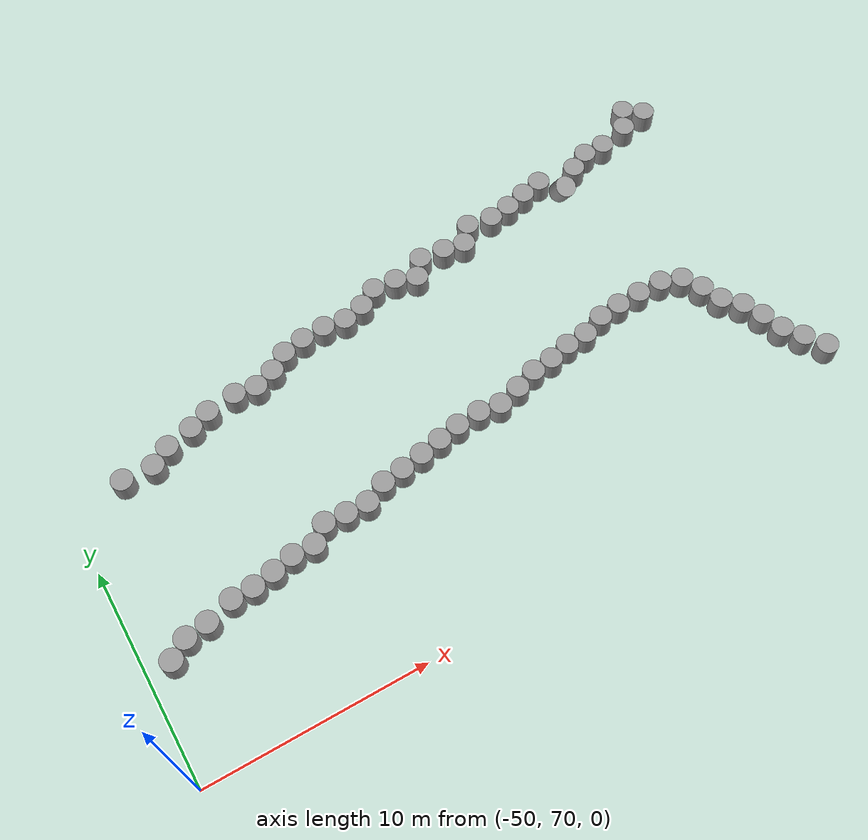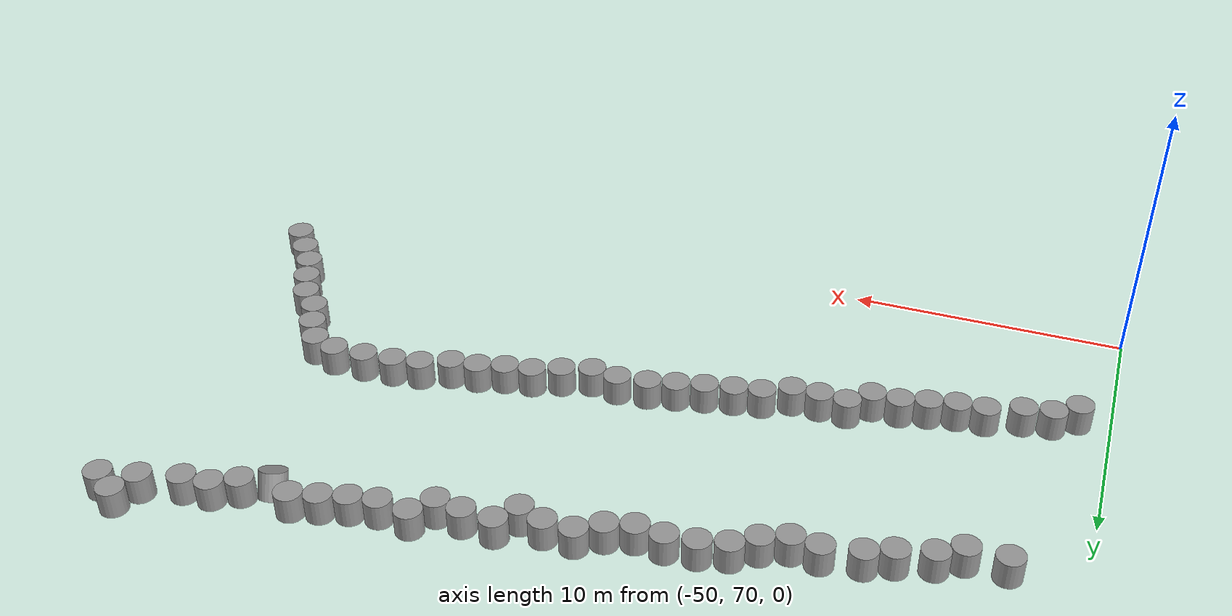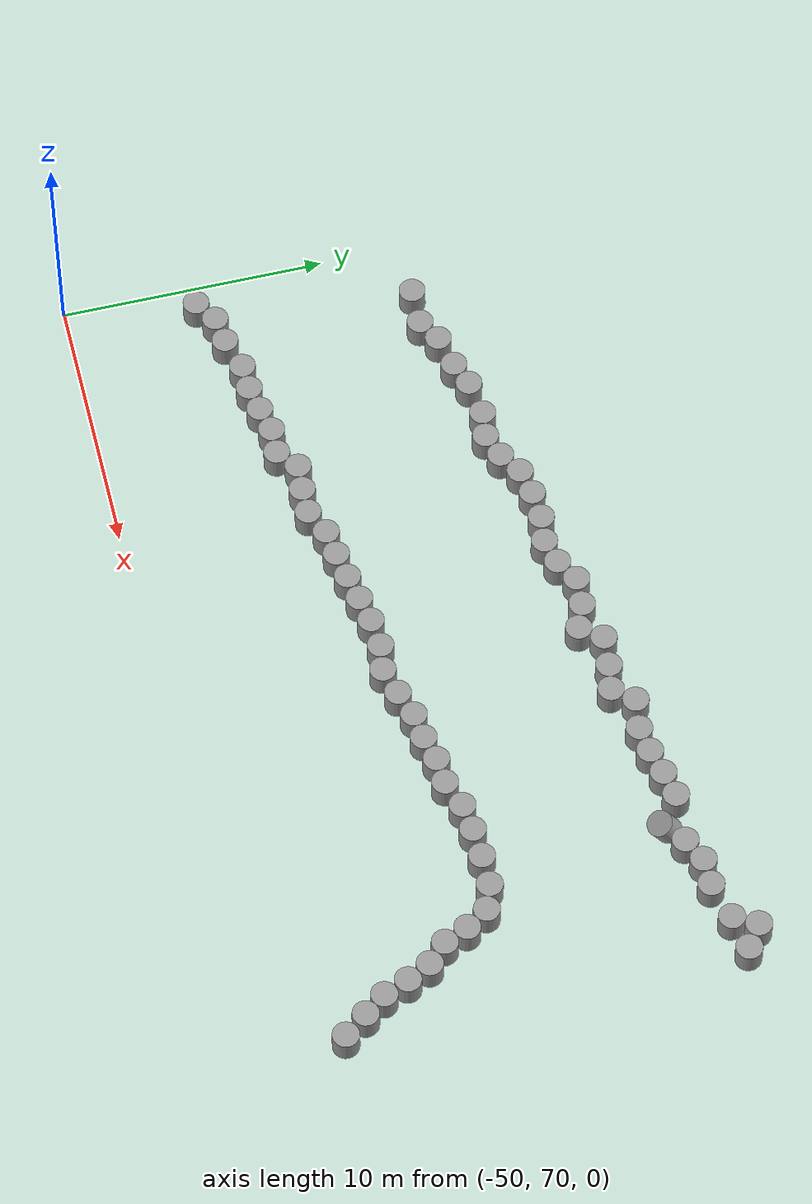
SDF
<sdf version="1.7">
 <world name="default">
  <model name="unit_cylinder_20">
   <pose>-17.9194 73.537 0.45131 1.4e-05 9e-06 0.000669</pose>
   <link name="link">
    <inertial>
     <mass>1</mass>
     <inertia><ixx>0.145833</ixx><ixy>0</ixy><ixz>0</ixz><iyy>0.145833</iyy><iyz>0</iyz><izz>0.125</izz></inertia>
    </inertial>
    <collision name="collision">
     <geometry><cylinder><radius>0.5</radius><length>1</length></cylinder></geometry>
    </collision>
    <visual name="visual">
     <geometry><cylinder><radius>0.5</radius><length>1</length></cylinder></geometry>
     <material>
      <script><name>Gazebo/Grey</name><uri>file://media/materials/scripts/gazebo.material</uri></script>
     </material>
    </visual>
   </link>
  </model>
  <model name="unit_cylinder_21">
   <pose>-18.5602 74.411 0.451304 7e-06 1e-05 9.9e-05</pose>
   <link name="link">
    <inertial>
     <mass>1</mass>
     <inertia><ixx>0.145833</ixx><ixy>0</ixy><ixz>0</ixz><iyy>0.145833</iyy><iyz>0</iyz><izz>0.125</izz></inertia>
    </inertial>
    <collision name="collision">
     <geometry><cylinder><radius>0.5</radius><length>1</length></cylinder></geometry>
    </collision>
    <visual name="visual">
     <geometry><cylinder><radius>0.5</radius><length>1</length></cylinder></geometry>
     <material>
      <script><name>Gazebo/Grey</name><uri>file://media/materials/scripts/gazebo.material</uri></script>
     </material>
    </visual>
   </link>
  </model>
  <model name="unit_cylinder_22">
   <pose>-19.1418 75.2245 0.451293 1e-06 -3e-06 0.001733</pose>
   <link name="link">
    <inertial>
     <mass>1</mass>
     <inertia><ixx>0.145833</ixx><ixy>0</ixy><ixz>0</ixz><iyy>0.145833</iyy><iyz>0</iyz><izz>0.125</izz></inertia>
    </inertial>
    <collision name="collision">
     <geometry><cylinder><radius>0.5</radius><length>1</length></cylinder></geometry>
    </collision>
    <visual name="visual">
     <geometry><cylinder><radius>0.5</radius><length>1</length></cylinder></geometry>
     <material>
      <script><name>Gazebo/Grey</name><uri>file://media/materials/scripts/gazebo.material</uri></script>
     </material>
    </visual>
   </link>
  </model>
  <model name="unit_cylinder_23">
   <pose>-19.5113 76.185 0.451305 1.8e-05 1e-06 0.017178</pose>
   <link name="link">
    <inertial>
     <mass>1</mass>
     <inertia><ixx>0.145833</ixx><ixy>0</ixy><ixz>0</ixz><iyy>0.145833</iyy><iyz>0</iyz><izz>0.125</izz></inertia>
    </inertial>
    <collision name="collision">
     <geometry><cylinder><radius>0.5</radius><length>1</length></cylinder></geometry>
    </collision>
    <visual name="visual">
     <geometry><cylinder><radius>0.5</radius><length>1</length></cylinder></geometry>
     <material>
      <script><name>Gazebo/Grey</name><uri>file://media/materials/scripts/gazebo.material</uri></script>
     </material>
    </visual>
   </link>
  </model>
  <model name="unit_cylinder_24">
   <pose>-19.9475 77.0849 0.451301 2.1e-05 -1e-06 -0.011678</pose>
   <link name="link">
    <inertial>
     <mass>1</mass>
     <inertia><ixx>0.145833</ixx><ixy>0</ixy><ixz>0</ixz><iyy>0.145833</iyy><iyz>0</iyz><izz>0.125</izz></inertia>
    </inertial>
    <collision name="collision">
     <geometry><cylinder><radius>0.5</radius><length>1</length></cylinder></geometry>
    </collision>
    <visual name="visual">
     <geometry><cylinder><radius>0.5</radius><length>1</length></cylinder></geometry>
     <material>
      <script><name>Gazebo/Grey</name><uri>file://media/materials/scripts/gazebo.material</uri></script>
     </material>
    </visual>
   </link>
  </model>
  <model name="unit_cylinder_25">
   <pose>-20.6426 77.8038 0.451297 2e-06 -5e-06 0.034095</pose>
   <link name="link">
    <inertial>
     <mass>1</mass>
     <inertia><ixx>0.145833</ixx><ixy>0</ixy><ixz>0</ixz><iyy>0.145833</iyy><iyz>0</iyz><izz>0.125</izz></inertia>
    </inertial>
    <collision name="collision">
     <geometry><cylinder><radius>0.5</radius><length>1</length></cylinder></geometry>
    </collision>
    <visual name="visual">
     <geometry><cylinder><radius>0.5</radius><length>1</length></cylinder></geometry>
     <material>
      <script><name>Gazebo/Grey</name><uri>file://media/materials/scripts/gazebo.material</uri></script>
     </material>
    </visual>
   </link>
  </model>
  <model name="unit_cylinder_26">
   <pose>-21.0312 78.7252 0.451299 9e-06 -1.4e-05 0.113391</pose>
   <link name="link">
    <inertial>
     <mass>1</mass>
     <inertia><ixx>0.145833</ixx><ixy>0</ixy><ixz>0</ixz><iyy>0.145833</iyy><iyz>0</iyz><izz>0.125</izz></inertia>
    </inertial>
    <collision name="collision">
     <geometry><cylinder><radius>0.5</radius><length>1</length></cylinder></geometry>
    </collision>
    <visual name="visual">
     <geometry><cylinder><radius>0.5</radius><length>1</length></cylinder></geometry>
     <material>
      <script><name>Gazebo/Grey</name><uri>file://media/materials/scripts/gazebo.material</uri></script>
     </material>
    </visual>
   </link>
  </model>
  <model name="unit_cylinder_27">
   <pose>-21.5664 79.57 0.451289 1e-06 -1.4e-05 0.025575</pose>
   <link name="link">
    <inertial>
     <mass>1</mass>
     <inertia><ixx>0.145833</ixx><ixy>0</ixy><ixz>0</ixz><iyy>0.145833</iyy><iyz>0</iyz><izz>0.125</izz></inertia>
    </inertial>
    <collision name="collision">
     <geometry><cylinder><radius>0.5</radius><length>1</length></cylinder></geometry>
    </collision>
    <visual name="visual">
     <geometry><cylinder><radius>0.5</radius><length>1</length></cylinder></geometry>
     <material>
      <script><name>Gazebo/Grey</name><uri>file://media/materials/scripts/gazebo.material</uri></script>
     </material>
    </visual>
   </link>
  </model>
  <model name="unit_cylinder_28">
   <pose>-22.5992 87.2027 0.452086 0.004535 0.000849 -0.012464</pose>
   <link name="link">
    <inertial>
     <mass>1</mass>
     <inertia><ixx>0.145833</ixx><ixy>0</ixy><ixz>0</ixz><iyy>0.145833</iyy><iyz>0</iyz><izz>0.125</izz></inertia>
    </inertial>
    <collision name="collision">
     <geometry><cylinder><radius>0.5</radius><length>1</length></cylinder></geometry>
    </collision>
    <visual name="visual">
     <geometry><cylinder><radius>0.5</radius><length>1</length></cylinder></geometry>
     <material>
      <script><name>Gazebo/Grey</name><uri>file://media/materials/scripts/gazebo.material</uri></script>
     </material>
    </visual>
   </link>
  </model>
  <model name="unit_cylinder_29">
   <pose>-21.7016 87.6433 0.453475 0.004662 0.001231 -0.073484</pose>
   <link name="link">
    <inertial>
     <mass>1</mass>
     <inertia><ixx>0.145833</ixx><ixy>0</ixy><ixz>0</ixz><iyy>0.145833</iyy><iyz>0</iyz><izz>0.125</izz></inertia>
    </inertial>
    <collision name="collision">
     <geometry><cylinder><radius>0.5</radius><length>1</length></cylinder></geometry>
    </collision>
    <visual name="visual">
     <geometry><cylinder><radius>0.5</radius><length>1</length></cylinder></geometry>
     <material>
      <script><name>Gazebo/Grey</name><uri>file://media/materials/scripts/gazebo.material</uri></script>
     </material>
    </visual>
   </link>
  </model>
  <model name="unit_cylinder_30">
   <pose>-20.6888 87.6672 0.452716 0.004649 0.000823 -0.00265</pose>
   <link name="link">
    <inertial>
     <mass>1</mass>
     <inertia><ixx>0.145833</ixx><ixy>0</ixy><ixz>0</ixz><iyy>0.145833</iyy><iyz>0</iyz><izz>0.125</izz></inertia>
    </inertial>
    <collision name="collision">
     <geometry><cylinder><radius>0.5</radius><length>1</length></cylinder></geometry>
    </collision>
    <visual name="visual">
     <geometry><cylinder><radius>0.5</radius><length>1</length></cylinder></geometry>
     <material>
      <script><name>Gazebo/Grey</name><uri>file://media/materials/scripts/gazebo.material</uri></script>
     </material>
    </visual>
   </link>
  </model>
  <model name="unit_cylinder_31">
   <pose>-19.2525 88.0542 0.453461 0.004626 0.001251 -0.17126</pose>
   <link name="link">
    <inertial>
     <mass>1</mass>
     <inertia><ixx>0.145833</ixx><ixy>0</ixy><ixz>0</ixz><iyy>0.145833</iyy><iyz>0</iyz><izz>0.125</izz></inertia>
    </inertial>
    <collision name="collision">
     <geometry><cylinder><radius>0.5</radius><length>1</length></cylinder></geometry>
    </collision>
    <visual name="visual">
     <geometry><cylinder><radius>0.5</radius><length>1</length></cylinder></geometry>
     <material>
      <script><name>Gazebo/Grey</name><uri>file://media/materials/scripts/gazebo.material</uri></script>
     </material>
    </visual>
   </link>
  </model>
  <model name="unit_cylinder_32">
   <pose>-18.7557 88.9221 0.457344 0.005127 0.000781 0.039913</pose>
   <link name="link">
    <inertial>
     <mass>1</mass>
     <inertia><ixx>0.145833</ixx><ixy>0</ixy><ixz>0</ixz><iyy>0.145833</iyy><iyz>0</iyz><izz>0.125</izz></inertia>
    </inertial>
    <collision name="collision">
     <geometry><cylinder><radius>0.5</radius><length>1</length></cylinder></geometry>
    </collision>
    <visual name="visual">
     <geometry><cylinder><radius>0.5</radius><length>1</length></cylinder></geometry>
     <material>
      <script><name>Gazebo/Grey</name><uri>file://media/materials/scripts/gazebo.material</uri></script>
     </material>
    </visual>
   </link>
  </model>
  <model name="unit_cylinder_33">
   <pose>-17.9369 88.3481 0.453737 0.003912 0.003043 -0.417717</pose>
   <link name="link">
    <inertial>
     <mass>1</mass>
     <inertia><ixx>0.145833</ixx><ixy>0</ixy><ixz>0</ixz><iyy>0.145833</iyy><iyz>0</iyz><izz>0.125</izz></inertia>
    </inertial>
    <collision name="collision">
     <geometry><cylinder><radius>0.5</radius><length>1</length></cylinder></geometry>
    </collision>
    <visual name="visual">
     <geometry><cylinder><radius>0.5</radius><length>1</length></cylinder></geometry>
     <material>
      <script><name>Gazebo/Grey</name><uri>file://media/materials/scripts/gazebo.material</uri></script>
     </material>
    </visual>
   </link>
  </model>
  <model name="unit_cylinder_72">
   <pose>-22.5065 79.9107 0.451281 -1.8e-05 -8e-06 -0.000212</pose>
   <link name="link">
    <inertial>
     <mass>1</mass>
     <inertia><ixx>0.145833</ixx><ixy>0</ixy><ixz>0</ixz><iyy>0.145833</iyy><iyz>0</iyz><izz>0.125</izz></inertia>
    </inertial>
    <collision name="collision">
     <geometry><cylinder><radius>0.5</radius><length>1</length></cylinder></geometry>
    </collision>
    <visual name="visual">
     <geometry><cylinder><radius>0.5</radius><length>1</length></cylinder></geometry>
     <material>
      <script><name>Gazebo/Grey</name><uri>file://media/materials/scripts/gazebo.material</uri></script>
     </material>
    </visual>
   </link>
  </model>
  <model name="unit_cylinder_73">
   <pose>-23.6803 79.9058 0.45126 6.7e-05 -9e-06 -0.002203</pose>
   <link name="link">
    <inertial>
     <mass>1</mass>
     <inertia><ixx>0.145833</ixx><ixy>0</ixy><ixz>0</ixz><iyy>0.145833</iyy><iyz>0</iyz><izz>0.125</izz></inertia>
    </inertial>
    <collision name="collision">
     <geometry><cylinder><radius>0.5</radius><length>1</length></cylinder></geometry>
    </collision>
    <visual name="visual">
     <geometry><cylinder><radius>0.5</radius><length>1</length></cylinder></geometry>
     <material>
      <script><name>Gazebo/Grey</name><uri>file://media/materials/scripts/gazebo.material</uri></script>
     </material>
    </visual>
   </link>
  </model>
  <model name="unit_cylinder_74">
   <pose>-24.7959 79.8423 0.451281 8.5e-05 1.2e-05 -0.000329</pose>
   <link name="link">
    <inertial>
     <mass>1</mass>
     <inertia><ixx>0.145833</ixx><ixy>0</ixy><ixz>0</ixz><iyy>0.145833</iyy><iyz>0</iyz><izz>0.125</izz></inertia>
    </inertial>
    <collision name="collision">
     <geometry><cylinder><radius>0.5</radius><length>1</length></cylinder></geometry>
    </collision>
    <visual name="visual">
     <geometry><cylinder><radius>0.5</radius><length>1</length></cylinder></geometry>
     <material>
      <script><name>Gazebo/Grey</name><uri>file://media/materials/scripts/gazebo.material</uri></script>
     </material>
    </visual>
   </link>
  </model>
  <model name="unit_cylinder_75">
   <pose>-25.8239 79.7045 0.451267 5.3e-05 1e-05 -0.001294</pose>
   <link name="link">
    <inertial>
     <mass>1</mass>
     <inertia><ixx>0.145833</ixx><ixy>0</ixy><ixz>0</ixz><iyy>0.145833</iyy><iyz>0</iyz><izz>0.125</izz></inertia>
    </inertial>
    <collision name="collision">
     <geometry><cylinder><radius>0.5</radius><length>1</length></cylinder></geometry>
    </collision>
    <visual name="visual">
     <geometry><cylinder><radius>0.5</radius><length>1</length></cylinder></geometry>
     <material>
      <script><name>Gazebo/Grey</name><uri>file://media/materials/scripts/gazebo.material</uri></script>
     </material>
    </visual>
   </link>
  </model>
  <model name="unit_cylinder_76">
   <pose>-26.8746 79.3098 0.451252 6.6e-05 1.1e-05 0.003908</pose>
   <link name="link">
    <inertial>
     <mass>1</mass>
     <inertia><ixx>0.145833</ixx><ixy>0</ixy><ixz>0</ixz><iyy>0.145833</iyy><iyz>0</iyz><izz>0.125</izz></inertia>
    </inertial>
    <collision name="collision">
     <geometry><cylinder><radius>0.5</radius><length>1</length></cylinder></geometry>
    </collision>
    <visual name="visual">
     <geometry><cylinder><radius>0.5</radius><length>1</length></cylinder></geometry>
     <material>
      <script><name>Gazebo/Grey</name><uri>file://media/materials/scripts/gazebo.material</uri></script>
     </material>
    </visual>
   </link>
  </model>
  <model name="unit_cylinder_77">
   <pose>-27.8711 79.2268 0.451271 9.6e-05 1.4e-05 0.006871</pose>
   <link name="link">
    <inertial>
     <mass>1</mass>
     <inertia><ixx>0.145833</ixx><ixy>0</ixy><ixz>0</ixz><iyy>0.145833</iyy><iyz>0</iyz><izz>0.125</izz></inertia>
    </inertial>
    <collision name="collision">
     <geometry><cylinder><radius>0.5</radius><length>1</length></cylinder></geometry>
    </collision>
    <visual name="visual">
     <geometry><cylinder><radius>0.5</radius><length>1</length></cylinder></geometry>
     <material>
      <script><name>Gazebo/Grey</name><uri>file://media/materials/scripts/gazebo.material</uri></script>
     </material>
    </visual>
   </link>
  </model>
  <model name="unit_cylinder_79">
   <pose>-29.835 78.8506 0.451251 5.1e-05 9e-06 -0.002312</pose>
   <link name="link">
    <inertial>
     <mass>1</mass>
     <inertia><ixx>0.145833</ixx><ixy>0</ixy><ixz>0</ixz><iyy>0.145833</iyy><iyz>0</iyz><izz>0.125</izz></inertia>
    </inertial>
    <collision name="collision">
     <geometry><cylinder><radius>0.5</radius><length>1</length></cylinder></geometry>
    </collision>
    <visual name="visual">
     <geometry><cylinder><radius>0.5</radius><length>1</length></cylinder></geometry>
     <material>
      <script><name>Gazebo/Grey</name><uri>file://media/materials/scripts/gazebo.material</uri></script>
     </material>
    </visual>
   </link>
  </model>
  <model name="unit_cylinder_78">
   <pose>-28.8407 78.9793 0.451249 7.1e-05 1.4e-05 0.021625</pose>
   <link name="link">
    <inertial>
     <mass>1</mass>
     <inertia><ixx>0.145833</ixx><ixy>0</ixy><ixz>0</ixz><iyy>0.145833</iyy><iyz>0</iyz><izz>0.125</izz></inertia>
    </inertial>
    <collision name="collision">
     <geometry><cylinder><radius>0.5</radius><length>1</length></cylinder></geometry>
    </collision>
    <visual name="visual">
     <geometry><cylinder><radius>0.5</radius><length>1</length></cylinder></geometry>
     <material>
      <script><name>Gazebo/Grey</name><uri>file://media/materials/scripts/gazebo.material</uri></script>
     </material>
    </visual>
   </link>
  </model>
  <model name="unit_cylinder_80">
   <pose>-30.8382 78.4926 0.451243 6.7e-05 1e-05 -0.003375</pose>
   <link name="link">
    <inertial>
     <mass>1</mass>
     <inertia><ixx>0.145833</ixx><ixy>0</ixy><ixz>0</ixz><iyy>0.145833</iyy><iyz>0</iyz><izz>0.125</izz></inertia>
    </inertial>
    <collision name="collision">
     <geometry><cylinder><radius>0.5</radius><length>1</length></cylinder></geometry>
    </collision>
    <visual name="visual">
     <geometry><cylinder><radius>0.5</radius><length>1</length></cylinder></geometry>
     <material>
      <script><name>Gazebo/Grey</name><uri>file://media/materials/scripts/gazebo.material</uri></script>
     </material>
    </visual>
   </link>
  </model>
  <model name="unit_cylinder_81">
   <pose>-31.899 78.1773 0.451229 5.4e-05 8e-06 0.023818</pose>
   <link name="link">
    <inertial>
     <mass>1</mass>
     <inertia><ixx>0.145833</ixx><ixy>0</ixy><ixz>0</ixz><iyy>0.145833</iyy><iyz>0</iyz><izz>0.125</izz></inertia>
    </inertial>
    <collision name="collision">
     <geometry><cylinder><radius>0.5</radius><length>1</length></cylinder></geometry>
    </collision>
    <visual name="visual">
     <geometry><cylinder><radius>0.5</radius><length>1</length></cylinder></geometry>
     <material>
      <script><name>Gazebo/Grey</name><uri>file://media/materials/scripts/gazebo.material</uri></script>
     </material>
    </visual>
   </link>
  </model>
  <model name="unit_cylinder_82">
   <pose>-32.8945 78.3245 0.451256 7e-05 1.8e-05 0.020933</pose>
   <link name="link">
    <inertial>
     <mass>1</mass>
     <inertia><ixx>0.145833</ixx><ixy>0</ixy><ixz>0</ixz><iyy>0.145833</iyy><iyz>0</iyz><izz>0.125</izz></inertia>
    </inertial>
    <collision name="collision">
     <geometry><cylinder><radius>0.5</radius><length>1</length></cylinder></geometry>
    </collision>
    <visual name="visual">
     <geometry><cylinder><radius>0.5</radius><length>1</length></cylinder></geometry>
     <material>
      <script><name>Gazebo/Grey</name><uri>file://media/materials/scripts/gazebo.material</uri></script>
     </material>
    </visual>
   </link>
  </model>
  <model name="unit_cylinder_83">
   <pose>-34.0002 78.2197 0.451262 7.6e-05 1.3e-05 0.000617</pose>
   <link name="link">
    <inertial>
     <mass>1</mass>
     <inertia><ixx>0.145833</ixx><ixy>0</ixy><ixz>0</ixz><iyy>0.145833</iyy><iyz>0</iyz><izz>0.125</izz></inertia>
    </inertial>
    <collision name="collision">
     <geometry><cylinder><radius>0.5</radius><length>1</length></cylinder></geometry>
    </collision>
    <visual name="visual">
     <geometry><cylinder><radius>0.5</radius><length>1</length></cylinder></geometry>
     <material>
      <script><name>Gazebo/Grey</name><uri>file://media/materials/scripts/gazebo.material</uri></script>
     </material>
    </visual>
   </link>
  </model>
  <model name="unit_cylinder_84">
   <pose>-34.9966 78.0122 0.45126 7.2e-05 1.8e-05 0.000824</pose>
   <link name="link">
    <inertial>
     <mass>1</mass>
     <inertia><ixx>0.145833</ixx><ixy>0</ixy><ixz>0</ixz><iyy>0.145833</iyy><iyz>0</iyz><izz>0.125</izz></inertia>
    </inertial>
    <collision name="collision">
     <geometry><cylinder><radius>0.5</radius><length>1</length></cylinder></geometry>
    </collision>
    <visual name="visual">
     <geometry><cylinder><radius>0.5</radius><length>1</length></cylinder></geometry>
     <material>
      <script><name>Gazebo/Grey</name><uri>file://media/materials/scripts/gazebo.material</uri></script>
     </material>
    </visual>
   </link>
  </model>
  <model name="unit_cylinder_85">
   <pose>-35.9944 77.798 0.451261 7e-05 -0 0.000613</pose>
   <link name="link">
    <inertial>
     <mass>1</mass>
     <inertia><ixx>0.145833</ixx><ixy>0</ixy><ixz>0</ixz><iyy>0.145833</iyy><iyz>0</iyz><izz>0.125</izz></inertia>
    </inertial>
    <collision name="collision">
     <geometry><cylinder><radius>0.5</radius><length>1</length></cylinder></geometry>
    </collision>
    <visual name="visual">
     <geometry><cylinder><radius>0.5</radius><length>1</length></cylinder></geometry>
     <material>
      <script><name>Gazebo/Grey</name><uri>file://media/materials/scripts/gazebo.material</uri></script>
     </material>
    </visual>
   </link>
  </model>
  <model name="unit_cylinder_85_clone">
   <pose>-37.0201 77.6086 0.451254 7.2e-05 1.3e-05 -0.009599</pose>
   <link name="link">
    <inertial>
     <mass>1</mass>
     <inertia><ixx>0.145833</ixx><ixy>0</ixy><ixz>0</ixz><iyy>0.145833</iyy><iyz>0</iyz><izz>0.125</izz></inertia>
    </inertial>
    <collision name="collision">
     <geometry><cylinder><radius>0.5</radius><length>1</length></cylinder></geometry>
    </collision>
    <visual name="visual">
     <geometry><cylinder><radius>0.5</radius><length>1</length></cylinder></geometry>
     <material>
      <script><name>Gazebo/Grey</name><uri>file://media/materials/scripts/gazebo.material</uri></script>
     </material>
    </visual>
   </link>
  </model>
  <model name="unit_cylinder_85_clone_0">
   <pose>-38.0131 77.457 0.451253 7.9e-05 1.3e-05 0.010202</pose>
   <link name="link">
    <inertial>
     <mass>1</mass>
     <inertia><ixx>0.145833</ixx><ixy>0</ixy><ixz>0</ixz><iyy>0.145833</iyy><iyz>0</iyz><izz>0.125</izz></inertia>
    </inertial>
    <collision name="collision">
     <geometry><cylinder><radius>0.5</radius><length>1</length></cylinder></geometry>
    </collision>
    <visual name="visual">
     <geometry><cylinder><radius>0.5</radius><length>1</length></cylinder></geometry>
     <material>
      <script><name>Gazebo/Grey</name><uri>file://media/materials/scripts/gazebo.material</uri></script>
     </material>
    </visual>
   </link>
  </model>
  <model name="unit_cylinder_85_clone_1">
   <pose>-38.9988 76.9934 0.451233 6e-05 1.7e-05 0.018811</pose>
   <link name="link">
    <inertial>
     <mass>1</mass>
     <inertia><ixx>0.145833</ixx><ixy>0</ixy><ixz>0</ixz><iyy>0.145833</iyy><iyz>0</iyz><izz>0.125</izz></inertia>
    </inertial>
    <collision name="collision">
     <geometry><cylinder><radius>0.5</radius><length>1</length></cylinder></geometry>
    </collision>
    <visual name="visual">
     <geometry><cylinder><radius>0.5</radius><length>1</length></cylinder></geometry>
     <material>
      <script><name>Gazebo/Grey</name><uri>file://media/materials/scripts/gazebo.material</uri></script>
     </material>
    </visual>
   </link>
  </model>
  <model name="unit_cylinder_85_clone_2">
   <pose>-39.9988 76.9984 0.451239 7e-05 1e-05 0.037805</pose>
   <link name="link">
    <inertial>
     <mass>1</mass>
     <inertia><ixx>0.145833</ixx><ixy>0</ixy><ixz>0</ixz><iyy>0.145833</iyy><iyz>0</iyz><izz>0.125</izz></inertia>
    </inertial>
    <collision name="collision">
     <geometry><cylinder><radius>0.5</radius><length>1</length></cylinder></geometry>
    </collision>
    <visual name="visual">
     <geometry><cylinder><radius>0.5</radius><length>1</length></cylinder></geometry>
     <material>
      <script><name>Gazebo/Grey</name><uri>file://media/materials/scripts/gazebo.material</uri></script>
     </material>
    </visual>
   </link>
  </model>
  <model name="unit_cylinder_85_clone_3">
   <pose>-40.9966 77.0676 0.451284 7.4e-05 -1.5e-05 0.021981</pose>
   <link name="link">
    <inertial>
     <mass>1</mass>
     <inertia><ixx>0.145833</ixx><ixy>0</ixy><ixz>0</ixz><iyy>0.145833</iyy><iyz>0</iyz><izz>0.125</izz></inertia>
    </inertial>
    <collision name="collision">
     <geometry><cylinder><radius>0.5</radius><length>1</length></cylinder></geometry>
    </collision>
    <visual name="visual">
     <geometry><cylinder><radius>0.5</radius><length>1</length></cylinder></geometry>
     <material>
      <script><name>Gazebo/Grey</name><uri>file://media/materials/scripts/gazebo.material</uri></script>
     </material>
    </visual>
   </link>
  </model>
  <model name="unit_cylinder_85_clone_4">
   <pose>-41.764 76.4264 0.451223 8e-05 -2.1e-05 -0.013714</pose>
   <link name="link">
    <inertial>
     <mass>1</mass>
     <inertia><ixx>0.145833</ixx><ixy>0</ixy><ixz>0</ixz><iyy>0.145833</iyy><iyz>0</iyz><izz>0.125</izz></inertia>
    </inertial>
    <collision name="collision">
     <geometry><cylinder><radius>0.5</radius><length>1</length></cylinder></geometry>
    </collision>
    <visual name="visual">
     <geometry><cylinder><radius>0.5</radius><length>1</length></cylinder></geometry>
     <material>
      <script><name>Gazebo/Grey</name><uri>file://media/materials/scripts/gazebo.material</uri></script>
     </material>
    </visual>
   </link>
  </model>
  <model name="unit_cylinder_85_clone_5">
   <pose>-42.7637 76.4524 0.451246 7e-05 1.5e-05 0.010313</pose>
   <link name="link">
    <inertial>
     <mass>1</mass>
     <inertia><ixx>0.145833</ixx><ixy>0</ixy><ixz>0</ixz><iyy>0.145833</iyy><iyz>0</iyz><izz>0.125</izz></inertia>
    </inertial>
    <collision name="collision">
     <geometry><cylinder><radius>0.5</radius><length>1</length></cylinder></geometry>
    </collision>
    <visual name="visual">
     <geometry><cylinder><radius>0.5</radius><length>1</length></cylinder></geometry>
     <material>
      <script><name>Gazebo/Grey</name><uri>file://media/materials/scripts/gazebo.material</uri></script>
     </material>
    </visual>
   </link>
  </model>
  <model name="unit_cylinder_85_clone_6">
   <pose>-43.7364 76.219 0.451246 7.9e-05 2.8e-05 0.01032</pose>
   <link name="link">
    <inertial>
     <mass>1</mass>
     <inertia><ixx>0.145833</ixx><ixy>0</ixy><ixz>0</ixz><iyy>0.145833</iyy><iyz>0</iyz><izz>0.125</izz></inertia>
    </inertial>
    <collision name="collision">
     <geometry><cylinder><radius>0.5</radius><length>1</length></cylinder></geometry>
    </collision>
    <visual name="visual">
     <geometry><cylinder><radius>0.5</radius><length>1</length></cylinder></geometry>
     <material>
      <script><name>Gazebo/Grey</name><uri>file://media/materials/scripts/gazebo.material</uri></script>
     </material>
    </visual>
   </link>
  </model>
  <model name="unit_cylinder_85_clone_7">
   <pose>-44.7192 76.0312 0.451251 7.7e-05 2e-05 -0.020396</pose>
   <link name="link">
    <inertial>
     <mass>1</mass>
     <inertia><ixx>0.145833</ixx><ixy>0</ixy><ixz>0</ixz><iyy>0.145833</iyy><iyz>0</iyz><izz>0.125</izz></inertia>
    </inertial>
    <collision name="collision">
     <geometry><cylinder><radius>0.5</radius><length>1</length></cylinder></geometry>
    </collision>
    <visual name="visual">
     <geometry><cylinder><radius>0.5</radius><length>1</length></cylinder></geometry>
     <material>
      <script><name>Gazebo/Grey</name><uri>file://media/materials/scripts/gazebo.material</uri></script>
     </material>
    </visual>
   </link>
  </model>
  <model name="unit_cylinder_85_clone_8">
   <pose>-45.7185 75.9918 0.451265 8.5e-05 2e-05 -0.002285</pose>
   <link name="link">
    <inertial>
     <mass>1</mass>
     <inertia><ixx>0.145833</ixx><ixy>0</ixy><ixz>0</ixz><iyy>0.145833</iyy><iyz>0</iyz><izz>0.125</izz></inertia>
    </inertial>
    <collision name="collision">
     <geometry><cylinder><radius>0.5</radius><length>1</length></cylinder></geometry>
    </collision>
    <visual name="visual">
     <geometry><cylinder><radius>0.5</radius><length>1</length></cylinder></geometry>
     <material>
      <script><name>Gazebo/Grey</name><uri>file://media/materials/scripts/gazebo.material</uri></script>
     </material>
    </visual>
   </link>
  </model>
  <model name="unit_cylinder_85_clone_9">
   <pose>-46.9607 75.6013 0.451258 8.4e-05 2.2e-05 0.010195</pose>
   <link name="link">
    <inertial>
     <mass>1</mass>
     <inertia><ixx>0.145833</ixx><ixy>0</ixy><ixz>0</ixz><iyy>0.145833</iyy><iyz>0</iyz><izz>0.125</izz></inertia>
    </inertial>
    <collision name="collision">
     <geometry><cylinder><radius>0.5</radius><length>1</length></cylinder></geometry>
    </collision>
    <visual name="visual">
     <geometry><cylinder><radius>0.5</radius><length>1</length></cylinder></geometry>
     <material>
      <script><name>Gazebo/Grey</name><uri>file://media/materials/scripts/gazebo.material</uri></script>
     </material>
    </visual>
   </link>
  </model>
  <model name="unit_cylinder_85_clone_10">
   <pose>-47.9832 75.4466 0.451269 0.000101 3.4e-05 -0.011203</pose>
   <link name="link">
    <inertial>
     <mass>1</mass>
     <inertia><ixx>0.145833</ixx><ixy>0</ixy><ixz>0</ixz><iyy>0.145833</iyy><iyz>0</iyz><izz>0.125</izz></inertia>
    </inertial>
    <collision name="collision">
     <geometry><cylinder><radius>0.5</radius><length>1</length></cylinder></geometry>
    </collision>
    <visual name="visual">
     <geometry><cylinder><radius>0.5</radius><length>1</length></cylinder></geometry>
     <material>
      <script><name>Gazebo/Grey</name><uri>file://media/materials/scripts/gazebo.material</uri></script>
     </material>
    </visual>
   </link>
  </model>
  <model name="unit_cylinder_85_clone_11">
   <pose>-48.8277 74.8925 0.451247 9.4e-05 2.9e-05 0.015322</pose>
   <link name="link">
    <inertial>
     <mass>1</mass>
     <inertia><ixx>0.145833</ixx><ixy>0</ixy><ixz>0</ixz><iyy>0.145833</iyy><iyz>0</iyz><izz>0.125</izz></inertia>
    </inertial>
    <collision name="collision">
     <geometry><cylinder><radius>0.5</radius><length>1</length></cylinder></geometry>
    </collision>
    <visual name="visual">
     <geometry><cylinder><radius>0.5</radius><length>1</length></cylinder></geometry>
     <material>
      <script><name>Gazebo/Grey</name><uri>file://media/materials/scripts/gazebo.material</uri></script>
     </material>
    </visual>
   </link>
  </model>
  <model name="unit_cylinder_85_clone_43">
   <pose>-23.514 86.6761 0.415829 0.43537 0.078986 0.004588</pose>
   <link name="link">
    <inertial>
     <mass>1</mass>
     <inertia><ixx>0.145833</ixx><ixy>0</ixy><ixz>0</ixz><iyy>0.145833</iyy><iyz>0</iyz><izz>0.125</izz></inertia>
    </inertial>
    <collision name="collision">
     <geometry><cylinder><radius>0.5</radius><length>1</length></cylinder></geometry>
    </collision>
    <visual name="visual">
     <geometry><cylinder><radius>0.5</radius><length>1</length></cylinder></geometry>
     <material>
      <script><name>Gazebo/Grey</name><uri>file://media/materials/scripts/gazebo.material</uri></script>
     </material>
    </visual>
   </link>
  </model>
  <model name="unit_cylinder_85_clone_44">
   <pose>-24.4575 87.3383 0.454154 0.0054 0.000159 0.143255</pose>
   <link name="link">
    <inertial>
     <mass>1</mass>
     <inertia><ixx>0.145833</ixx><ixy>0</ixy><ixz>0</ixz><iyy>0.145833</iyy><iyz>0</iyz><izz>0.125</izz></inertia>
    </inertial>
    <collision name="collision">
     <geometry><cylinder><radius>0.5</radius><length>1</length></cylinder></geometry>
    </collision>
    <visual name="visual">
     <geometry><cylinder><radius>0.5</radius><length>1</length></cylinder></geometry>
     <material>
      <script><name>Gazebo/Grey</name><uri>file://media/materials/scripts/gazebo.material</uri></script>
     </material>
    </visual>
   </link>
  </model>
  <model name="unit_cylinder_85_clone_45">
   <pose>-25.4329 87.1159 0.453931 0.005221 0.000851 0.011425</pose>
   <link name="link">
    <inertial>
     <mass>1</mass>
     <inertia><ixx>0.145833</ixx><ixy>0</ixy><ixz>0</ixz><iyy>0.145833</iyy><iyz>0</iyz><izz>0.125</izz></inertia>
    </inertial>
    <collision name="collision">
     <geometry><cylinder><radius>0.5</radius><length>1</length></cylinder></geometry>
    </collision>
    <visual name="visual">
     <geometry><cylinder><radius>0.5</radius><length>1</length></cylinder></geometry>
     <material>
      <script><name>Gazebo/Grey</name><uri>file://media/materials/scripts/gazebo.material</uri></script>
     </material>
    </visual>
   </link>
  </model>
  <model name="unit_cylinder_85_clone_46">
   <pose>-26.4039 86.8682 0.453715 0.004802 0.000917 -0.011344</pose>
   <link name="link">
    <inertial>
     <mass>1</mass>
     <inertia><ixx>0.145833</ixx><ixy>0</ixy><ixz>0</ixz><iyy>0.145833</iyy><iyz>0</iyz><izz>0.125</izz></inertia>
    </inertial>
    <collision name="collision">
     <geometry><cylinder><radius>0.5</radius><length>1</length></cylinder></geometry>
    </collision>
    <visual name="visual">
     <geometry><cylinder><radius>0.5</radius><length>1</length></cylinder></geometry>
     <material>
      <script><name>Gazebo/Grey</name><uri>file://media/materials/scripts/gazebo.material</uri></script>
     </material>
    </visual>
   </link>
  </model>
  <model name="unit_cylinder_85_clone_47">
   <pose>-27.3925 86.717 0.453773 0.004652 0.001824 -0.202007</pose>
   <link name="link">
    <inertial>
     <mass>1</mass>
     <inertia><ixx>0.145833</ixx><ixy>0</ixy><ixz>0</ixz><iyy>0.145833</iyy><iyz>0</iyz><izz>0.125</izz></inertia>
    </inertial>
    <collision name="collision">
     <geometry><cylinder><radius>0.5</radius><length>1</length></cylinder></geometry>
    </collision>
    <visual name="visual">
     <geometry><cylinder><radius>0.5</radius><length>1</length></cylinder></geometry>
     <material>
      <script><name>Gazebo/Grey</name><uri>file://media/materials/scripts/gazebo.material</uri></script>
     </material>
    </visual>
   </link>
  </model>
  <model name="unit_cylinder_85_clone_48">
   <pose>-28.5492 86.8839 0.455554 0.005252 0.001094 -0.023978</pose>
   <link name="link">
    <inertial>
     <mass>1</mass>
     <inertia><ixx>0.145833</ixx><ixy>0</ixy><ixz>0</ixz><iyy>0.145833</iyy><iyz>0</iyz><izz>0.125</izz></inertia>
    </inertial>
    <collision name="collision">
     <geometry><cylinder><radius>0.5</radius><length>1</length></cylinder></geometry>
    </collision>
    <visual name="visual">
     <geometry><cylinder><radius>0.5</radius><length>1</length></cylinder></geometry>
     <material>
      <script><name>Gazebo/Grey</name><uri>file://media/materials/scripts/gazebo.material</uri></script>
     </material>
    </visual>
   </link>
  </model>
  <model name="unit_cylinder_85_clone_49">
   <pose>-29.1833 86.1107 0.452493 0.004772 -0.002233 0.602682</pose>
   <link name="link">
    <inertial>
     <mass>1</mass>
     <inertia><ixx>0.145833</ixx><ixy>0</ixy><ixz>0</ixz><iyy>0.145833</iyy><iyz>0</iyz><izz>0.125</izz></inertia>
    </inertial>
    <collision name="collision">
     <geometry><cylinder><radius>0.5</radius><length>1</length></cylinder></geometry>
    </collision>
    <visual name="visual">
     <geometry><cylinder><radius>0.5</radius><length>1</length></cylinder></geometry>
     <material>
      <script><name>Gazebo/Grey</name><uri>file://media/materials/scripts/gazebo.material</uri></script>
     </material>
    </visual>
   </link>
  </model>
  <model name="unit_cylinder_85_clone_50">
   <pose>-30.1678 86.2862 0.453915 0.005025 0.001568 -0.135041</pose>
   <link name="link">
    <inertial>
     <mass>1</mass>
     <inertia><ixx>0.145833</ixx><ixy>0</ixy><ixz>0</ixz><iyy>0.145833</iyy><iyz>0</iyz><izz>0.125</izz></inertia>
    </inertial>
    <collision name="collision">
     <geometry><cylinder><radius>0.5</radius><length>1</length></cylinder></geometry>
    </collision>
    <visual name="visual">
     <geometry><cylinder><radius>0.5</radius><length>1</length></cylinder></geometry>
     <material>
      <script><name>Gazebo/Grey</name><uri>file://media/materials/scripts/gazebo.material</uri></script>
     </material>
    </visual>
   </link>
  </model>
  <model name="unit_cylinder_85_clone_51">
   <pose>-31.3237 86.3843 0.455457 0.005338 0.000763 0.032604</pose>
   <link name="link">
    <inertial>
     <mass>1</mass>
     <inertia><ixx>0.145833</ixx><ixy>0</ixy><ixz>0</ixz><iyy>0.145833</iyy><iyz>0</iyz><izz>0.125</izz></inertia>
    </inertial>
    <collision name="collision">
     <geometry><cylinder><radius>0.5</radius><length>1</length></cylinder></geometry>
    </collision>
    <visual name="visual">
     <geometry><cylinder><radius>0.5</radius><length>1</length></cylinder></geometry>
     <material>
      <script><name>Gazebo/Grey</name><uri>file://media/materials/scripts/gazebo.material</uri></script>
     </material>
    </visual>
   </link>
  </model>
  <model name="unit_cylinder_85_clone_52">
   <pose>-31.9273 85.587 0.452267 0.005353 0.000455 0.087891</pose>
   <link name="link">
    <inertial>
     <mass>1</mass>
     <inertia><ixx>0.145833</ixx><ixy>0</ixy><ixz>0</ixz><iyy>0.145833</iyy><iyz>0</iyz><izz>0.125</izz></inertia>
    </inertial>
    <collision name="collision">
     <geometry><cylinder><radius>0.5</radius><length>1</length></cylinder></geometry>
    </collision>
    <visual name="visual">
     <geometry><cylinder><radius>0.5</radius><length>1</length></cylinder></geometry>
     <material>
      <script><name>Gazebo/Grey</name><uri>file://media/materials/scripts/gazebo.material</uri></script>
     </material>
    </visual>
   </link>
  </model>
  <model name="unit_cylinder_85_clone_53">
   <pose>-32.8596 85.9486 0.454559 0.005218 0.001385 -0.088234</pose>
   <link name="link">
    <inertial>
     <mass>1</mass>
     <inertia><ixx>0.145833</ixx><ixy>0</ixy><ixz>0</ixz><iyy>0.145833</iyy><iyz>0</iyz><izz>0.125</izz></inertia>
    </inertial>
    <collision name="collision">
     <geometry><cylinder><radius>0.5</radius><length>1</length></cylinder></geometry>
    </collision>
    <visual name="visual">
     <geometry><cylinder><radius>0.5</radius><length>1</length></cylinder></geometry>
     <material>
      <script><name>Gazebo/Grey</name><uri>file://media/materials/scripts/gazebo.material</uri></script>
     </material>
    </visual>
   </link>
  </model>
  <model name="unit_cylinder_85_clone_54">
   <pose>-33.9435 86.0086 0.455883 0.005332 0.000909 0.003992</pose>
   <link name="link">
    <inertial>
     <mass>1</mass>
     <inertia><ixx>0.145833</ixx><ixy>0</ixy><ixz>0</ixz><iyy>0.145833</iyy><iyz>0</iyz><izz>0.125</izz></inertia>
    </inertial>
    <collision name="collision">
     <geometry><cylinder><radius>0.5</radius><length>1</length></cylinder></geometry>
    </collision>
    <visual name="visual">
     <geometry><cylinder><radius>0.5</radius><length>1</length></cylinder></geometry>
     <material>
      <script><name>Gazebo/Grey</name><uri>file://media/materials/scripts/gazebo.material</uri></script>
     </material>
    </visual>
   </link>
  </model>
  <model name="unit_cylinder_85_clone_55">
   <pose>-34.8056 85.4997 0.453979 0.005308 0.000861 0.011556</pose>
   <link name="link">
    <inertial>
     <mass>1</mass>
     <inertia><ixx>0.145833</ixx><ixy>0</ixy><ixz>0</ixz><iyy>0.145833</iyy><iyz>0</iyz><izz>0.125</izz></inertia>
    </inertial>
    <collision name="collision">
     <geometry><cylinder><radius>0.5</radius><length>1</length></cylinder></geometry>
    </collision>
    <visual name="visual">
     <geometry><cylinder><radius>0.5</radius><length>1</length></cylinder></geometry>
     <material>
      <script><name>Gazebo/Grey</name><uri>file://media/materials/scripts/gazebo.material</uri></script>
     </material>
    </visual>
   </link>
  </model>
  <model name="unit_cylinder_85_clone_56">
   <pose>-35.7778 85.2448 0.453736 0.004871 0.000865 0.002308</pose>
   <link name="link">
    <inertial>
     <mass>1</mass>
     <inertia><ixx>0.145833</ixx><ixy>0</ixy><ixz>0</ixz><iyy>0.145833</iyy><iyz>0</iyz><izz>0.125</izz></inertia>
    </inertial>
    <collision name="collision">
     <geometry><cylinder><radius>0.5</radius><length>1</length></cylinder></geometry>
    </collision>
    <visual name="visual">
     <geometry><cylinder><radius>0.5</radius><length>1</length></cylinder></geometry>
     <material>
      <script><name>Gazebo/Grey</name><uri>file://media/materials/scripts/gazebo.material</uri></script>
     </material>
    </visual>
   </link>
  </model>
  <model name="unit_cylinder_85_clone_57">
   <pose>-36.7894 85.3736 0.455152 0.005339 0.000934 -0.000114</pose>
   <link name="link">
    <inertial>
     <mass>1</mass>
     <inertia><ixx>0.145833</ixx><ixy>0</ixy><ixz>0</ixz><iyy>0.145833</iyy><iyz>0</iyz><izz>0.125</izz></inertia>
    </inertial>
    <collision name="collision">
     <geometry><cylinder><radius>0.5</radius><length>1</length></cylinder></geometry>
    </collision>
    <visual name="visual">
     <geometry><cylinder><radius>0.5</radius><length>1</length></cylinder></geometry>
     <material>
      <script><name>Gazebo/Grey</name><uri>file://media/materials/scripts/gazebo.material</uri></script>
     </material>
    </visual>
   </link>
  </model>
  <model name="unit_cylinder_85_clone_58">
   <pose>-37.8667 85.3004 0.45576 0.005338 0.000935 -0.000131</pose>
   <link name="link">
    <inertial>
     <mass>1</mass>
     <inertia><ixx>0.145833</ixx><ixy>0</ixy><ixz>0</ixz><iyy>0.145833</iyy><iyz>0</iyz><izz>0.125</izz></inertia>
    </inertial>
    <collision name="collision">
     <geometry><cylinder><radius>0.5</radius><length>1</length></cylinder></geometry>
    </collision>
    <visual name="visual">
     <geometry><cylinder><radius>0.5</radius><length>1</length></cylinder></geometry>
     <material>
      <script><name>Gazebo/Grey</name><uri>file://media/materials/scripts/gazebo.material</uri></script>
     </material>
    </visual>
   </link>
  </model>
  <model name="unit_cylinder_85_clone_59">
   <pose>-38.8781 85.0788 0.455577 0.00433 0.003202 -0.447369</pose>
   <link name="link">
    <inertial>
     <mass>1</mass>
     <inertia><ixx>0.145833</ixx><ixy>0</ixy><ixz>0</ixz><iyy>0.145833</iyy><iyz>0</iyz><izz>0.125</izz></inertia>
    </inertial>
    <collision name="collision">
     <geometry><cylinder><radius>0.5</radius><length>1</length></cylinder></geometry>
    </collision>
    <visual name="visual">
     <geometry><cylinder><radius>0.5</radius><length>1</length></cylinder></geometry>
     <material>
      <script><name>Gazebo/Grey</name><uri>file://media/materials/scripts/gazebo.material</uri></script>
     </material>
    </visual>
   </link>
  </model>
  <model name="unit_cylinder_85_clone_60">
   <pose>-39.7175 84.5353 0.453689 0.004819 -0.000729 0.315787</pose>
   <link name="link">
    <inertial>
     <mass>1</mass>
     <inertia><ixx>0.145833</ixx><ixy>0</ixy><ixz>0</ixz><iyy>0.145833</iyy><iyz>0</iyz><izz>0.125</izz></inertia>
    </inertial>
    <collision name="collision">
     <geometry><cylinder><radius>0.5</radius><length>1</length></cylinder></geometry>
    </collision>
    <visual name="visual">
     <geometry><cylinder><radius>0.5</radius><length>1</length></cylinder></geometry>
     <material>
      <script><name>Gazebo/Grey</name><uri>file://media/materials/scripts/gazebo.material</uri></script>
     </material>
    </visual>
   </link>
  </model>
  <model name="unit_cylinder_85_clone_61">
   <pose>-40.6555 84.1887 0.452772 0.00441 -0.00177 0.525038</pose>
   <link name="link">
    <inertial>
     <mass>1</mass>
     <inertia><ixx>0.145833</ixx><ixy>0</ixy><ixz>0</ixz><iyy>0.145833</iyy><iyz>0</iyz><izz>0.125</izz></inertia>
    </inertial>
    <collision name="collision">
     <geometry><cylinder><radius>0.5</radius><length>1</length></cylinder></geometry>
    </collision>
    <visual name="visual">
     <geometry><cylinder><radius>0.5</radius><length>1</length></cylinder></geometry>
     <material>
      <script><name>Gazebo/Grey</name><uri>file://media/materials/scripts/gazebo.material</uri></script>
     </material>
    </visual>
   </link>
  </model>
  <model name="unit_cylinder_85_clone_62">
   <pose>-41.647 84.318 0.454284 0.005224 -0.000351 0.210066</pose>
   <link name="link">
    <inertial>
     <mass>1</mass>
     <inertia><ixx>0.145833</ixx><ixy>0</ixy><ixz>0</ixz><iyy>0.145833</iyy><iyz>0</iyz><izz>0.125</izz></inertia>
    </inertial>
    <collision name="collision">
     <geometry><cylinder><radius>0.5</radius><length>1</length></cylinder></geometry>
    </collision>
    <visual name="visual">
     <geometry><cylinder><radius>0.5</radius><length>1</length></cylinder></geometry>
     <material>
      <script><name>Gazebo/Grey</name><uri>file://media/materials/scripts/gazebo.material</uri></script>
     </material>
    </visual>
   </link>
  </model>
  <model name="unit_cylinder_85_clone_63">
   <pose>-43.0139 84.1189 0.45466 0.005284 0.001226 0.00225</pose>
   <link name="link">
    <inertial>
     <mass>1</mass>
     <inertia><ixx>0.145833</ixx><ixy>0</ixy><ixz>0</ixz><iyy>0.145833</iyy><iyz>0</iyz><izz>0.125</izz></inertia>
    </inertial>
    <collision name="collision">
     <geometry><cylinder><radius>0.5</radius><length>1</length></cylinder></geometry>
    </collision>
    <visual name="visual">
     <geometry><cylinder><radius>0.5</radius><length>1</length></cylinder></geometry>
     <material>
      <script><name>Gazebo/Grey</name><uri>file://media/materials/scripts/gazebo.material</uri></script>
     </material>
    </visual>
   </link>
  </model>
  <model name="unit_cylinder_85_clone_64">
   <pose>-43.9533 83.7671 0.453986 0.005253 0.001211 0.003133</pose>
   <link name="link">
    <inertial>
     <mass>1</mass>
     <inertia><ixx>0.145833</ixx><ixy>0</ixy><ixz>0</ixz><iyy>0.145833</iyy><iyz>0</iyz><izz>0.125</izz></inertia>
    </inertial>
    <collision name="collision">
     <geometry><cylinder><radius>0.5</radius><length>1</length></cylinder></geometry>
    </collision>
    <visual name="visual">
     <geometry><cylinder><radius>0.5</radius><length>1</length></cylinder></geometry>
     <material>
      <script><name>Gazebo/Grey</name><uri>file://media/materials/scripts/gazebo.material</uri></script>
     </material>
    </visual>
   </link>
  </model>
  <model name="unit_cylinder_85_clone_65">
   <pose>-45.193 83.459 0.453936 0.005172 0.001153 0.010964</pose>
   <link name="link">
    <inertial>
     <mass>1</mass>
     <inertia><ixx>0.145833</ixx><ixy>0</ixy><ixz>0</ixz><iyy>0.145833</iyy><iyz>0</iyz><izz>0.125</izz></inertia>
    </inertial>
    <collision name="collision">
     <geometry><cylinder><radius>0.5</radius><length>1</length></cylinder></geometry>
    </collision>
    <visual name="visual">
     <geometry><cylinder><radius>0.5</radius><length>1</length></cylinder></geometry>
     <material>
      <script><name>Gazebo/Grey</name><uri>file://media/materials/scripts/gazebo.material</uri></script>
     </material>
    </visual>
   </link>
  </model>
  <model name="unit_cylinder_85_clone_66">
   <pose>-46.0644 82.9585 0.452629 0.004635 0.001106 -0.004084</pose>
   <link name="link">
    <inertial>
     <mass>1</mass>
     <inertia><ixx>0.145833</ixx><ixy>0</ixy><ixz>0</ixz><iyy>0.145833</iyy><iyz>0</iyz><izz>0.125</izz></inertia>
    </inertial>
    <collision name="collision">
     <geometry><cylinder><radius>0.5</radius><length>1</length></cylinder></geometry>
    </collision>
    <visual name="visual">
     <geometry><cylinder><radius>0.5</radius><length>1</length></cylinder></geometry>
     <material>
      <script><name>Gazebo/Grey</name><uri>file://media/materials/scripts/gazebo.material</uri></script>
     </material>
    </visual>
   </link>
  </model>
  <model name="unit_cylinder_85_clone_67">
   <pose>-47.4691 82.9815 0.454181 0.005253 0.001438 -0.029956</pose>
   <link name="link">
    <inertial>
     <mass>1</mass>
     <inertia><ixx>0.145833</ixx><ixy>0</ixy><ixz>0</ixz><iyy>0.145833</iyy><iyz>0</iyz><izz>0.125</izz></inertia>
    </inertial>
    <collision name="collision">
     <geometry><cylinder><radius>0.5</radius><length>1</length></cylinder></geometry>
    </collision>
    <visual name="visual">
     <geometry><cylinder><radius>0.5</radius><length>1</length></cylinder></geometry>
     <material>
      <script><name>Gazebo/Grey</name><uri>file://media/materials/scripts/gazebo.material</uri></script>
     </material>
    </visual>
   </link>
  </model>
 </world>
</sdf>
